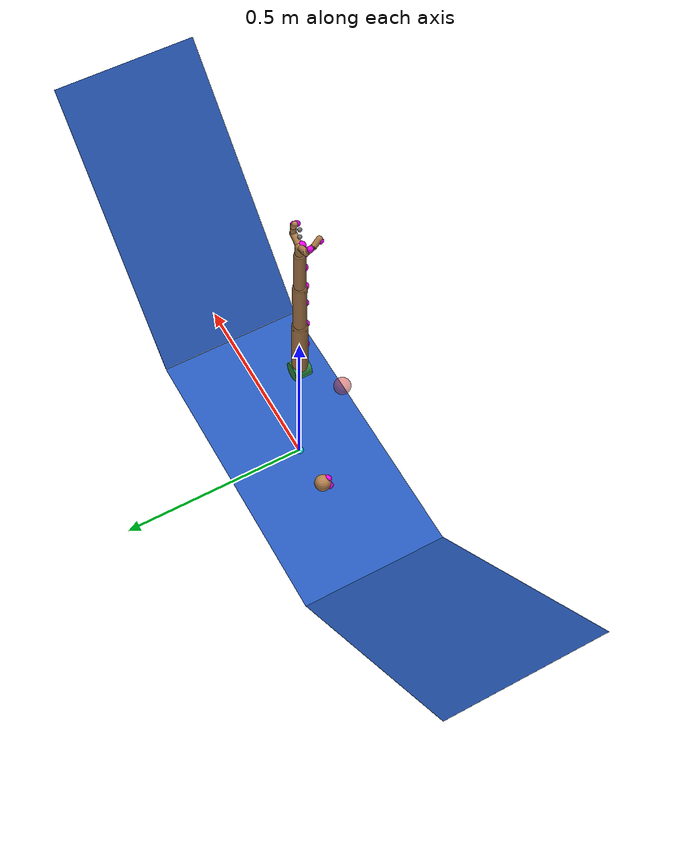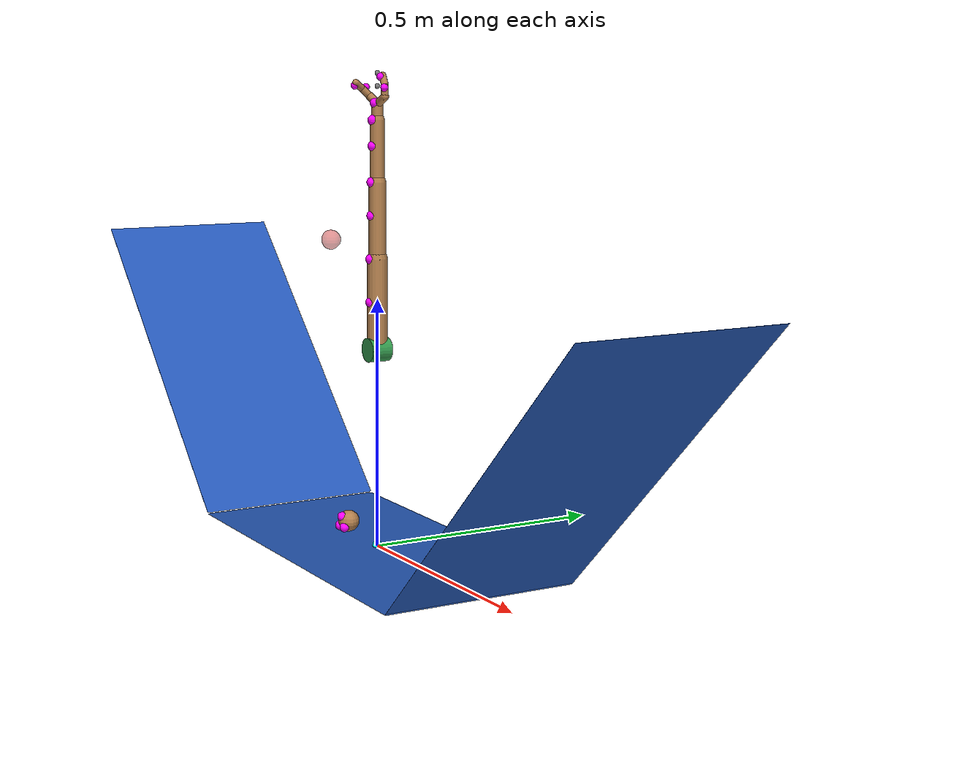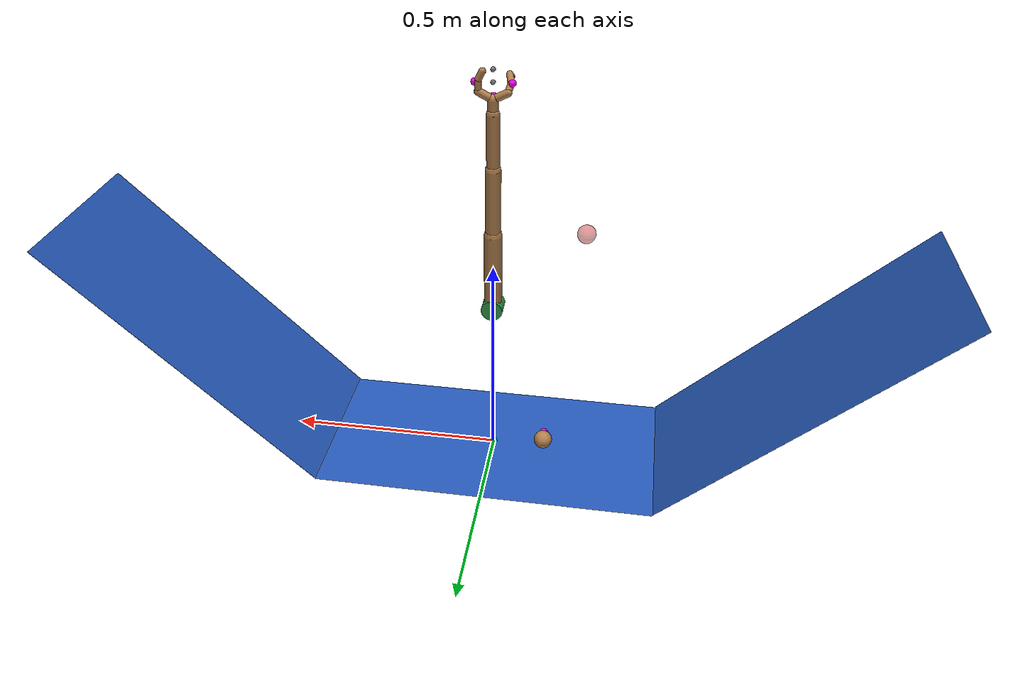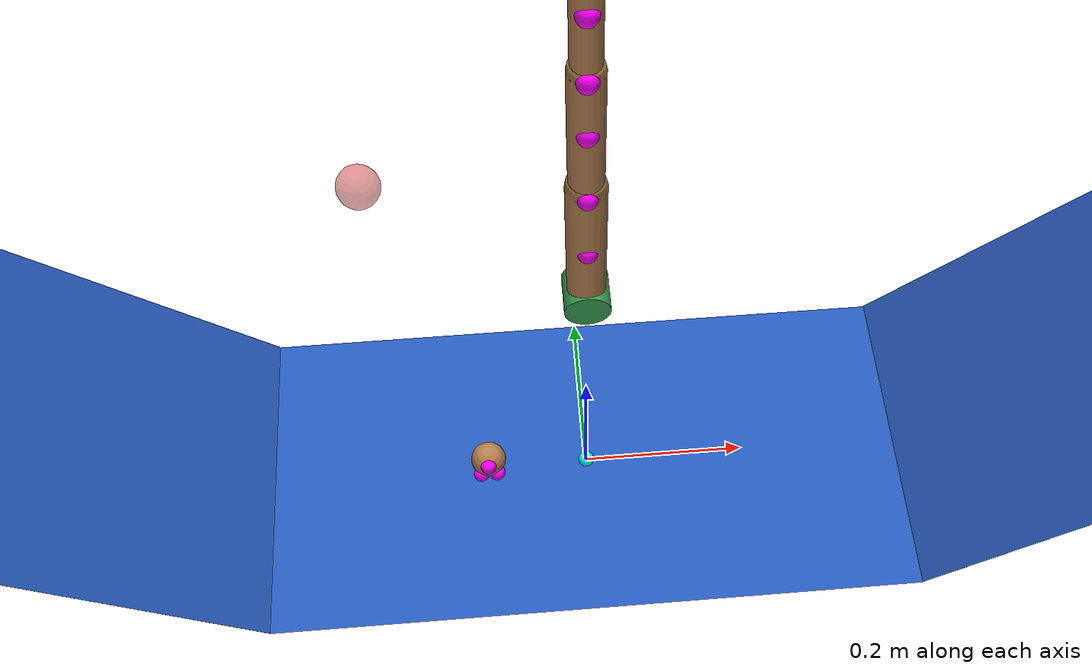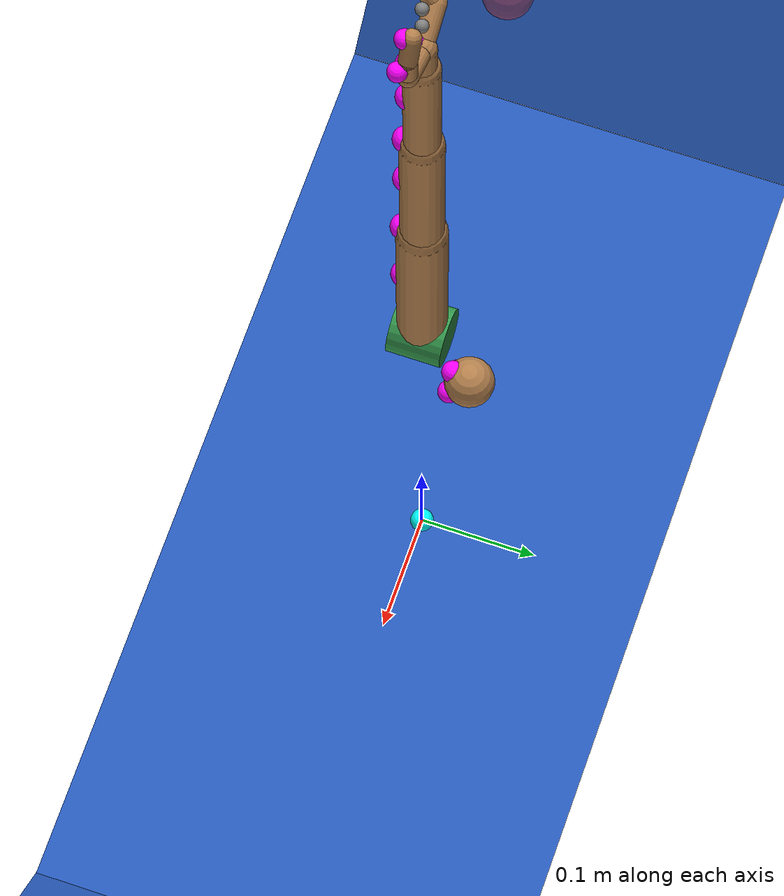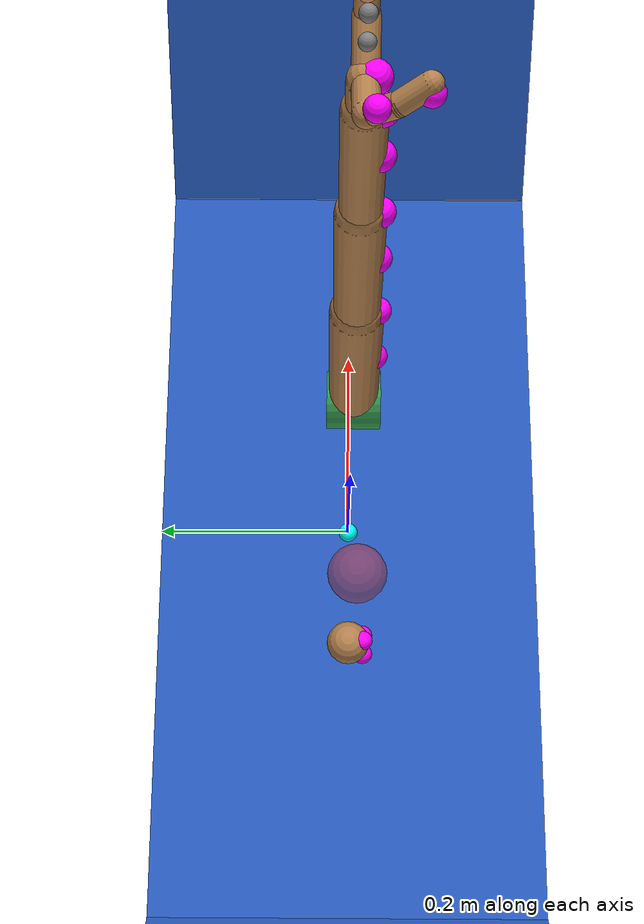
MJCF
<mujoco model="manipulator ball task">
  <include file="../common.xml"/>
  <include file="manipulator.xml" />

  <size memory="100K"/>

  <custom>
    <!-- agent -->
    <numeric name="agent_planner" data="0" />
    <numeric name="agent_horizon" data="0.75" />
    <numeric name="agent_timestep" data="0.005" />
    <numeric name="agent_sample_width" data="0.001" />
    <numeric name="agent_policy_width" data="0.0015" />
    <numeric name="sampling_spline_points" data="5" />
    <numeric name="sampling_exploration" data="0.1" />
    <numeric name="gradient_spline_points" data="10" />

    <!-- estimator -->
    <numeric name="estimator" data="0" />
    <numeric name="estimator_sensor_start" data="5" />
    <numeric name="estimator_number_sensor" data="14" />
  </custom>

  <sensor>
    <!-- cost -->
    <user name="Grasp" needstage="acc" dim="2" user="6 10.0 0 100.0 1.0e-6"/>
    <user name="Close" needstage="acc" dim="1" user="6 10.0 0 100.0 1.0e-6"/>
    <user name="Bring" needstage="acc" dim="2" user="6 10.0 0 100.0 1e-2"/>
    <user name="Control" needstage="acc" dim="5" user="3 0.0001 0.0 0.001 0.3"/>
    <user name="Ball Vel." needstage="acc" dim="2" user="0 0.1 0.0 1.0"/>

    <!-- estimator -->
    <framepos name="ball1" objtype="site" objname="ball1"/>
    <framepos name="ball2" objtype="site" objname="ball2"/>
    <framepos name="ball3" objtype="site" objname="ball3"/>
    <framepos name="upper_arm_site" objtype="site" objname="upper_arm_site" />
    <framepos name="upper_arm_site2" objtype="site" objname="upper_arm_site2" />
    <framepos name="middle_arm_site" objtype="site" objname="middle_arm_site" />
    <framepos name="middle_arm_site2" objtype="site" objname="middle_arm_site2" />
    <framepos name="lower_arm_site" objtype="site" objname="lower_arm_site" />
    <framepos name="lower_arm_site2" objtype="site" objname="lower_arm_site2" />
    <framepos name="wrist_site" objtype="site" objname="wrist_site" />
    <framepos name="wrist_site2" objtype="site" objname="wrist_site2" />
    <framepos name="wrist_site3" objtype="site" objname="wrist_site3" />
    <framepos name="thumbtip_site" objtype="site" objname="thumb_touch" />
    <framepos name="fingertip_site" objtype="site" objname="finger_touch" />

    <!-- residual -->
    <!-- Sphere sensors. -->
    <framepos name="ball_pos" objtype="site" objname="ball"/>
    <!-- Manipulator sensors. -->
    <framepos name="grasp_pos" objtype="site" objname="grasp"/>
    <framepos name="pinch_pos" objtype="site" objname="pinch"/>
    <tendonpos name="grasp" tendon="grasp"/>

    <!-- trace -->
    <framepos name="trace0" objtype="site" objname="grasp"/>
  </sensor>

  <worldbody>
    <!-- ball -->
    <body name="ball" pos="-.125 0 .022" childclass="object">
      <joint name="ball_x" type="slide" axis="1 0 0" ref="-.125"/>
      <joint name="ball_z" type="slide" axis="0 0 1" ref=".022"/>
      <geom  name="ball" type="sphere" size=".022" />
      <site  name="ball" type="sphere" rgba="1 0 1 0" size="0.01" pos="0 -0.015 0"  />
      <site  name="ball1" type="sphere" rgba="1 0 1 1" size="0.01" pos="0.01 -0.015 -0.01"  />
      <site  name="ball2" type="sphere" rgba="1 0 1 1" size="0.01" pos="-0.01 -0.015 -0.01"  />
      <site  name="ball3" type="sphere" rgba="1 0 1 1" size="0.01" pos="0 -0.015 0.01"  />
    </body>

    <!-- target ball position -->
    <body name="debug_target" mocap="true" pos="-0.2 0 0.6">
      <geom type="sphere" size="0.02" rgba="0.8 0.2 0.2 0.5" contype="0" conaffinity="0"/>
    </body>

    <!-- mocap for position sensor visualization -->
    <body name="mocap_ball1" mocap="true">
      <geom type="sphere" size="0.01" rgba="0 1 1 1" contype="0" conaffinity="0"/>
    </body>
    <body name="mocap_ball2" mocap="true">
      <geom type="sphere" size="0.01" rgba="0 1 1 1" contype="0" conaffinity="0"/>
    </body>
    <body name="mocap_ball3" mocap="true">
      <geom type="sphere" size="0.01" rgba="0 1 1 1" contype="0" conaffinity="0"/>
    </body>
    <body name="mocap_upper_arm" mocap="true">
      <geom type="sphere" size="0.01" rgba="0 1 1 1" contype="0" conaffinity="0"/>
    </body>
    <body name="mocap_upper_arm2" mocap="true">
      <geom type="sphere" size="0.01" rgba="0 1 1 1" contype="0" conaffinity="0"/>
    </body>
    <body name="mocap_middle_arm" mocap="true">
      <geom type="sphere" size="0.01" rgba="0 1 1 1" contype="0" conaffinity="0"/>
    </body>
    <body name="mocap_middle_arm2" mocap="true">
      <geom type="sphere" size="0.01" rgba="0 1 1 1" contype="0" conaffinity="0"/>
    </body>
    <body name="mocap_lower_arm" mocap="true">
      <geom type="sphere" size="0.01" rgba="0 1 1 1" contype="0" conaffinity="0"/>
    </body>
    <body name="mocap_lower_arm2" mocap="true">
      <geom type="sphere" size="0.01" rgba="0 1 1 1" contype="0" conaffinity="0"/>
    </body>
    <body name="mocap_wrist" mocap="true">
      <geom type="sphere" size="0.01" rgba="0 1 1 1" contype="0" conaffinity="0"/>
    </body>
    <body name="mocap_wrist2" mocap="true">
      <geom type="sphere" size="0.01" rgba="0 1 1 1" contype="0" conaffinity="0"/>
    </body>
    <body name="mocap_wrist3" mocap="true">
      <geom type="sphere" size="0.01" rgba="0 1 1 1" contype="0" conaffinity="0"/>
    </body>
    <body name="mocap_thumbtip" mocap="true">
      <geom type="sphere" size="0.01" rgba="0 1 1 1" contype="0" conaffinity="0"/>
    </body>
    <body name="mocap_fingertip" mocap="true">
      <geom type="sphere" size="0.01" rgba="0 1 1 1" contype="0" conaffinity="0"/>
    </body>
  </worldbody>
</mujoco>

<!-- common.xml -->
<mujoco>

    <visual>
        <headlight ambient=".4 .4 .4" diffuse=".8 .8 .8" specular="0.1 0.1 0.1"/>
        <map znear=".01"/>
        <quality shadowsize="2048"/>
        <global elevation="-15"/>
    </visual>

    <asset>
        <texture name="blue_grid" type="2d" builtin="checker" rgb1=".02 .14 .44" rgb2=".27 .55 1" width="300" height="300" mark="edge" markrgb="1 1 1"/>
        <material name="blue_grid" texture="blue_grid" texrepeat="1 1" texuniform="true" reflectance=".2"/>

        <texture name="grey_grid" type="2d" builtin="checker" rgb1=".26 .26 .26" rgb2=".6 .6 .6" width="300" height="300" mark="edge" markrgb="1 1 1"/>
        <material name="grey_grid" texture="grey_grid" texrepeat="1 1" texuniform="true" reflectance=".2"/>
        <texture name="skybox" type="skybox" builtin="gradient" rgb1=".66 .79 1" rgb2=".9 .91 .93" width="800" height="800"/>

        <material name="self" rgba=".7 .5 .3 1"/>
        <material name="self_default" rgba=".7 .5 .3 1"/>
        <material name="self_highlight" rgba="0 .5 .3 1"/>
        <material name="effector" rgba=".7 .4 .2 1"/>
        <material name="effector_default" rgba=".7 .4 .2 1"/>
        <material name="effector_highlight" rgba="0 .5 .3 1"/>
        <material name="decoration" rgba=".2 .6 .3 1"/>
        <material name="eye" rgba="0 .2 1 1"/>
        <material name="target" rgba=".6 .3 .3 1"/>
        <material name="target_default" rgba=".6 .3 .3 1"/>
        <material name="target_highlight" rgba=".6 .3 .3 .4"/>
        <material name="site" rgba=".5 .5 .5 .3"/>
    </asset>

    <size memory="1M"/>

    <statistic extent="0.4" center="0.3 0.1 0"/>

    <visual>
        <quality shadowsize="8192"/>
        <global azimuth="180" elevation="-30"/>
    </visual>

    <default>
        <geom friction="1.0"/>
    </default>

    <compiler angle="radian" autolimits="true"/>

    <asset>
        <mesh name="apple" file="../../shared_assets/apple/apple.obj" />
        <mesh name="apple_contact0" file="../../shared_assets/apple/contact0.stl"  />
        <mesh name="apple_contact1" file="../../shared_assets/apple/contact1.stl"  />

        <mesh name="doorknob" file="../../shared_assets/doorknob/doorknob.obj" />

        <mesh name="flashlight" file="../../shared_assets/flashlight/flashlight.obj" />
        <mesh name="flashlight_contact0" file="../../shared_assets/flashlight/contact0.stl"  />
        <mesh name="flashlight_contact1" file="../../shared_assets/flashlight/contact1.stl"  />

        <mesh name="hammer" file="../../shared_assets/hammer/hammer.obj" />
        <mesh name="hammer_contact0" file="../../shared_assets/hammer/contact0.stl"  />
        <mesh name="hammer_contact1" file="../../shared_assets/hammer/contact1.stl"  />

        <mesh name="phone" file="../../shared_assets/phone/phone.obj" />
        <mesh name="phone_contact0" file="../../shared_assets/phone/contact0.stl"  />
        <mesh name="phone_contact1" file="../../shared_assets/phone/contact1.stl"  />
        <mesh name="phone_contact2" file="../../shared_assets/phone/contact2.stl"  />

        <mesh name="stapler" file="../../shared_assets/stapler/stapler.obj" />
        <mesh name="stapler_contact0" file="../../shared_assets/stapler/contact0.stl"  />
        <mesh name="stapler_contact1" file="../../shared_assets/stapler/contact1.stl"  />
        <mesh name="stapler_contact2" file="../../shared_assets/stapler/contact2.stl"  />
        <mesh name="stapler_contact3" file="../../shared_assets/stapler/contact3.stl"  />
        <mesh name="stapler_contact4" file="../../shared_assets/stapler/contact4.stl"  />

        <mesh name="waterbottle" file="../../shared_assets/waterbottle/waterbottle.obj" />
        <mesh name="waterbottle_contact0" file="../../shared_assets/waterbottle/contact0.stl"  />
        <mesh name="waterbottle_contact1" file="../../shared_assets/waterbottle/contact1.stl"  />
    </asset>

</mujoco>

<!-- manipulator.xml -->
<mujoco model="Planar Manipulator">
  <asset>
    <texture name="background" builtin="flat" type="2d" mark="random" markrgb="1 1 1" width="800" height="800" rgb1=".2 .3 .4"/>
    <material name="background" texture="background" texrepeat="1 1" texuniform="true"/>
  </asset>

  <visual>
    <map shadowclip=".5"/>
    <quality shadowsize="2048"/>
    <global fovy="27" offwidth="1920" offheight="1080"/>
  </visual>>

  <option cone="elliptic" timestep="0.005"/>

  <default>
    <geom friction=".7" solimp="0.9 0.97 0.001" solref=".005 1"/>
    <joint solimplimit="0 0.99 0.01" solreflimit=".005 1"/>
    <general ctrllimited="true"/>
    <tendon width="0.01"/>
    <default class="arm">
      <geom type="capsule" material="self" density="500"/>
      <joint type="hinge" pos="0 0 0" axis="0 -1 0" limited="true"/>
      <default class="hand">
        <joint damping=".5" range="-10 60"/>
        <geom size=".008"/>
        <default class="fingertip">
          <geom type="sphere" size=".008" material="effector"/>
          <joint damping=".01" stiffness=".01" range="-40 20"/>
        </default>
      </default>
    </default>
    <default class="object">
      <geom material="self"/>
    </default>
    <default class="task">
      <site rgba="0 0 0 0"/>
    </default>
    <default class="obstacle">
      <geom material="decoration" friction="0"/>
    </default>
    <default class="ghost">
      <geom material="target" contype="0" conaffinity="0"/>
    </default>
  </default>

  <worldbody>
    <!-- Arena -->
    <light name="light" directional="true" diffuse=".6 .6 .6" pos="0 0 1" specular=".3 .3 .3"/>
    <geom name="floor" type="plane" pos="0 0 0" size=".4 .2 10" material="blue_grid"/>
    <geom name="wall1" type="plane" pos="-.682843 0 .282843" size=".4 .2 10" material="blue_grid" zaxis="1 0 1"/>
    <geom name="wall2" type="plane" pos=".682843 0 .282843" size=".4 .2 10" material="blue_grid" zaxis="-1 0 1"/>

    <!-- Arm -->
    <geom name="arm_root" type="cylinder" fromto="0 -.022 .4 0 .022 .4" size=".024"
          material="decoration" contype="0" conaffinity="0"/>
    <body name="upper_arm" pos="0 0 .4" childclass="arm">
      <joint name="arm_root" damping="2" limited="false"/>
      <geom  name="upper_arm"  size=".02" fromto="0 0 0 0 0 .18"/>
      <site name="upper_arm_site" rgba="1 0 1 1" type="sphere" size="0.01" pos="0 -0.015 0.095" />
      <site name="upper_arm_site2" rgba="1 0 1 1" type="sphere" size="0.01" pos="0 -0.015 0.18" />
      <body  name="middle_arm" pos="0 0 .18" childclass="arm">
        <joint name="arm_shoulder" damping="1.5" range="-160 160"/>
        <geom  name="middle_arm"  size=".017" fromto="0 0 0 0 0 .15"/>
        <site name="middle_arm_site" rgba="1 0 1 1" type="sphere" size="0.01" pos="0 -0.0125 0.085" />
        <site name="middle_arm_site2" rgba="1 0 1 1" type="sphere" size="0.01" pos="0 -0.0125 0.15" />
        <body  name="lower_arm" pos="0 0 .15">
          <joint name="arm_elbow" damping="1" range="-160 160"/>
          <geom  name="lower_arm" size=".014" fromto="0 0 0 0 0 .12"/>
          <site name="lower_arm_site" rgba="1 0 1 1" type="sphere" size="0.01" pos="0 -0.01 0.07" />
          <site name="lower_arm_site2" rgba="1 0 1 1" type="sphere" size="0.01" pos="0 -0.01 0.12" />
          <body  name="hand" pos="0 0 .12">
            <joint name="arm_wrist" damping=".5" range="-140 140" />
            <geom  name="hand" size=".011" fromto="0 0 0 0 0 .03"/>
            <geom  name="palm1"  fromto="0 0 .03  .03 0 .045" class="hand"/>
            <geom  name="palm2"  fromto="0 0 .03 -.03 0 .045" class="hand"/>
            <site  name="grasp" pos="0 0 .065" />
            <site  name="wrist_site" rgba="1 0 1 1" type="sphere" size="0.01" pos="0 -0.005 0.0325" />
            <site  name="wrist_site2" rgba="1 0 1 1" type="sphere" size="0.0075" pos="0.0375 -0.005 0.0625" />
            <site  name="wrist_site3" rgba="1 0 1 1" type="sphere" size="0.0075" pos="-0.0375 -0.005 0.0625" />
            <body  name="pinch site" pos="0 0 .090">
              <site  name="pinch"/>
              <inertial pos="0 0 0" mass="1e-6" diaginertia="1e-12 1e-12 1e-12"/>
              <camera name="hand" pos="0 -.3 0" xyaxes="1 0 0 0 0 1" mode="track"/>
            </body>
            <site  name="palm_touch" type="box" group="4" size=".025 .005 .008" pos="0 0 .043"/>
            <body name="thumb" pos=".03 0 .045" euler="0 -90 0" childclass="hand">
              <joint name="thumb"/>
              <geom  name="thumb1"  fromto="0 0 0 .02 0 -.01" size=".007"/>
              <geom  name="thumb2"  fromto=".02 0 -.01 .04 0 -.01" size=".007"/>
              <site  name="thumb_touch" pos=".0375 -0.005 -.01" rgba="1 0 1 1" type="sphere" size="0.0075"/>
            </body>
            <body name="finger" pos="-.03 0 .045" euler="0 90 180" childclass="hand">
              <joint name="finger"/>
              <geom  name="finger1"  fromto="0 0 0 .02 0 -.01" size=".007" />
              <geom  name="finger2"  fromto=".02 0 -.01 .04 0 -.01" size=".007"/>
              <site  name="finger_touch" pos="0.0375 0.005 -.01" rgba="1 0 1 1" type="sphere" size="0.0075"/>
            </body>
          </body>
        </body>
      </body>
    </body>
  </worldbody>

  <tendon>
    <fixed name="grasp">
      <joint joint="thumb"  coef=".5"/>
      <joint joint="finger" coef=".5"/>
    </fixed>
    <fixed name="coupling">
      <joint joint="thumb"  coef="-.5"/>
      <joint joint="finger" coef=".5"/>
    </fixed>
  </tendon>

  <equality>
    <tendon name="coupling" tendon1="coupling" solimp="0.95 0.99 0.001" solref=".005 .5"/>
  </equality>

  <actuator>
    <motor name="root"     joint="arm_root"     ctrlrange="-1 1"  gear="12"/>
    <motor name="shoulder" joint="arm_shoulder" ctrlrange="-1 1"  gear="8"/>
    <motor name="elbow"    joint="arm_elbow"    ctrlrange="-1 1"  gear="4"/>
    <motor name="wrist"    joint="arm_wrist"    ctrlrange="-1 1"  gear="2"/>
    <motor name="grasp"    tendon="grasp"       ctrlrange="-1 1"  gear="2"/>
  </actuator>
</mujoco>
